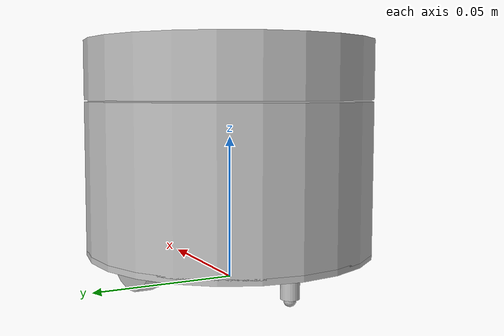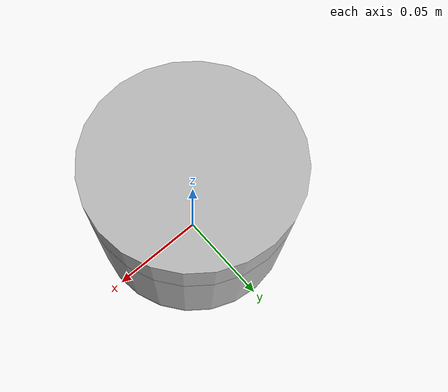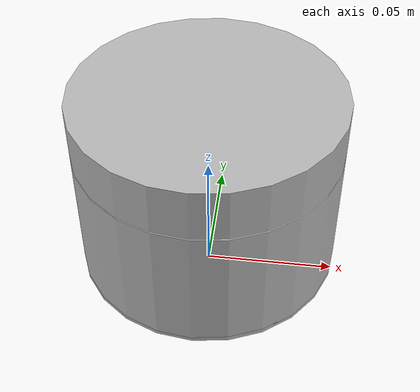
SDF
<?xml version='1.0'?>
<sdf version='1.4'>
  <model name="AMiRo">
    <static>false</static>
      <link name='chassis'>
        <inertial>
          <pose>-0.01 0.0 0.02 0 0 0</pose>
          <mass>0.4</mass>
          <inertia>
          <ixx>0.0012</ixx>
          <ixy>0.0</ixy>
          <ixz>0.0</ixz>
          <iyy>0.0012</iyy>
          <iyz>0.0</iyz>
          <izz>0.005</izz>
          </inertia>
        </inertial>
        <velocity_decay>
          <linear>0</linear>
          <angular>0</angular>
        </velocity_decay>

        <collision name='collision_DiWheelDrive'>
          <pose>0 0 .011 0 0 0</pose>
          <geometry>
            <cylinder>
              <radius>.05</radius>
              <length>.002</length>
            </cylinder>
          </geometry>
        </collision>
        <visual name='visual_DiWheelDrive'>
          <pose>0 0 .011 0 0 0</pose>
          <geometry>
            <cylinder>
              <radius>.05</radius>
              <length>.002</length>
            </cylinder>
          </geometry>
        </visual>

        <collision name='collision_SensorRing'>
          <pose>0 0 .037 0 0 0</pose>
          <geometry>
            <cylinder>
              <radius>.05</radius>
              <length>.051</length>
            </cylinder>
          </geometry>
        </collision>
        <visual name='visual_SensorRing'>
          <pose>0 0 .037 0 0 0</pose>
          <geometry>
            <cylinder>
              <radius>.05</radius>
              <length>.051</length>
            </cylinder>
          </geometry>
        </visual>

        <collision name='collision_Hat'>
          <pose>0 0 .073 0 0 0</pose>
          <geometry>
            <cylinder>
              <radius>.05</radius>
              <length>.02</length>
            </cylinder>
          </geometry>
        </collision>
        <visual name='visual_Hat'>
          <pose>0 0 .073 0 0 0</pose>
          <geometry>
            <cylinder>
              <radius>.05</radius>
              <length>.02</length>
            </cylinder>
          </geometry>
        </visual>

        <collision name="collision_sph_caster_front">
        <pose>0.042 0 0.0025 0 0 0</pose>
        <laser_retro>0</laser_retro>
        <geometry>
          <sphere>
            <radius>0.002</radius>
          </sphere>
        </geometry>
        <surface>
          <friction>
            <ode>
              <mu>0.01</mu>
              <mu2>0.01</mu2>
              <fdir1> 0 0 0</fdir1>
              <slip1>0</slip1>
              <slip2>0</slip2>
            </ode>
          </friction>
          <bounce>
            <restitution_coefficient>0</restitution_coefficient>
            <threshold>100000</threshold>
          </bounce>
          <contact>
            <ode>
              <soft_cfm>0</soft_cfm>
              <soft_erp>0.2</soft_erp>
              <kp>1000000000000</kp>
              <kd>1</kd>
              <max_vel>100</max_vel>
              <min_depth>0.001</min_depth>
            </ode>
          </contact>
        </surface>
        </collision>
        <collision name='collision_sph_caster_front'>
          <pose>0.042 0 0.0025 0 0 0</pose>
          <geometry>
            <sphere>
              <radius>.002</radius>
            </sphere>
          </geometry>
          <surface>
            <friction>
              <ode>
                <mu>0</mu>
                <mu2>0</mu2>
              </ode>
              <bullet>
                <friction>0</friction>
                <friction2>0</friction2>
              </bullet>
            </friction>
            <contact>
              <collide_without_contact>0</collide_without_contact>
            </contact>
          </surface>
        </collision>
        <visual name='visual_sph_caster_front'>
          <pose>0.042 0 0.0025 0 0 0</pose>
          <geometry>
            <sphere>
              <radius>.002</radius>
            </sphere>
          </geometry>
        </visual>

        <collision name='collision_cyl_caster_front'>
          <pose>0.042 0 0.0065 0 0 0</pose>
          <geometry>
            <cylinder>
              <radius>.003</radius>
              <length>.007</length>
            </cylinder>
          </geometry>
          <surface>
            <friction>
              <ode>
                <mu>0</mu>
                <mu2>0</mu2>
              </ode>
              <bullet>
                <friction>0</friction>
                <friction2>0</friction2>
              </bullet>
            </friction>
            <contact>
              <collide_without_contact>0</collide_without_contact>
            </contact>
          </surface>
        </collision>
        <visual name='visual_cyl_caster_front'>
          <pose>0.042 0 0.0065 0 0 0</pose>
          <geometry>
            <cylinder>
              <radius>.003</radius>
              <length>.007</length>
            </cylinder>
          </geometry>
        </visual>

        <collision name='collision_sph_caster_back'>
          <pose>-0.042 0 0.0025 0 0 0</pose>
          <geometry>
            <sphere>
              <radius>.002</radius>
            </sphere>
          </geometry>
        <surface>
          <friction>
            <ode>
              <mu>0.01</mu>
              <mu2>0.01</mu2>
              <fdir1> 0 0 0</fdir1>
              <slip1>0</slip1>
              <slip2>0</slip2>
            </ode>
          </friction>
        </surface>
        </collision>
        <visual name='visual_sph_caster_back'>
          <pose>-0.042 0 0.0025 0 0 0</pose>
          <geometry>
            <sphere>
              <radius>.002</radius>
            </sphere>
          </geometry>
        </visual>

        <collision name='collision_cyl_caster_back'>
          <pose>-0.042 0 0.0065 0 0 0</pose>
          <geometry>
            <cylinder>
              <radius>.003</radius>
              <length>.007</length>
            </cylinder>
          </geometry>
        </collision>
        <visual name='visual_cyl_caster_back'>
          <pose>-0.042 0 0.0065 0 0 0</pose>
          <geometry>
            <cylinder>
              <radius>.003</radius>
              <length>.007</length>
            </cylinder>
          </geometry>
        </visual>

      </link>

      <link name="left_wheel">
        <pose>0.0 0.035 0.030 0 1.5707 1.5707</pose>
        <inertial>
          <mass>0.02</mass>
          <inertia>
          <ixx>0.0000068453</ixx>
          <ixy>0.0</ixy>
          <ixz>0.0</ixz>
          <iyy>0.0000068453</iyy>
          <iyz>0.0</iyz>
          <izz>0.0000075625</izz>
          </inertia>
        </inertial>
        <collision name="collision">
          <geometry>
            <cylinder>
              <radius>.03</radius>
              <length>.006</length>
            </cylinder>
          </geometry>
          <surface>
            <friction>
              <ode>
                <mu>0.5</mu>
                <mu2>0.5</mu2>
                <slip1>0.5</slip1>
                <slip2>0.5</slip2>
              </ode>
            </friction>
          </surface>
        </collision>
        <visual name="visual">
          <geometry>
            <cylinder>
              <radius>.03</radius>
              <length>.006</length>
            </cylinder>
          </geometry>
        </visual>
      </link>

      <link name="right_wheel">
        <pose>0.0 -0.035 0.03 0 1.5707 1.5707</pose>
        <inertial>
          <mass>0.02</mass>
          <inertia>
          <ixx>0.0000068453</ixx>
          <ixy>0.0</ixy>
          <ixz>0.0</ixz>
          <iyy>0.0000068453</iyy>
          <iyz>0.0</iyz>
          <izz>0.0000075625</izz>
          </inertia>
        </inertial>
        <collision name="collision">
          <geometry>
            <cylinder>
              <radius>.03</radius>
              <length>.006</length>
            </cylinder>
          </geometry>
          <surface>
            <friction>
              <ode>
                <mu>0.5</mu>
                <mu2>0.5</mu2>
                <slip1>0.5</slip1>
                <slip2>0.5</slip2>
              </ode>
            </friction>
          </surface>
        </collision>
        <visual name="visual">
          <geometry>
            <cylinder>
              <radius>.03</radius>
              <length>.006</length>
            </cylinder>
          </geometry>
        </visual>
      </link>

      <joint type="revolute" name="left_wheel_hinge">
        <pose>0 0 0 0 0 0</pose>
        <child>left_wheel</child>
        <parent>chassis</parent>
        <axis>
          <xyz>0 1 0</xyz>
        </axis>
      </joint>
      <joint type="revolute" name="right_wheel_hinge">
        <pose>0 0 0 0 0 0</pose>
        <child>right_wheel</child>
        <parent>chassis</parent>
        <axis>
          <xyz>0 1 0</xyz>
        </axis>
      </joint>

    <link name="gps">
      <sensor name="positioning" type="gps">
        <pose>0 0 0 0 0 0</pose>
        <always_on>1</always_on>
        <update_rate>10</update_rate>
        <visualize>true</visualize>
      </sensor>
    </link>
  </model>
</sdf>
